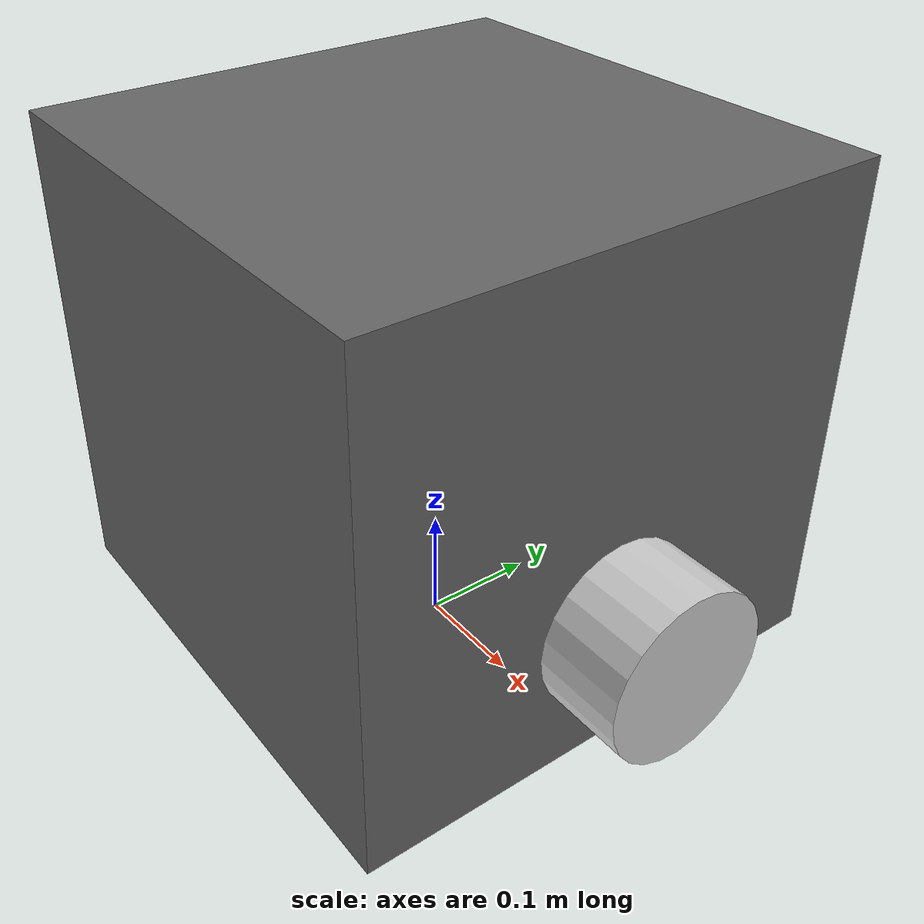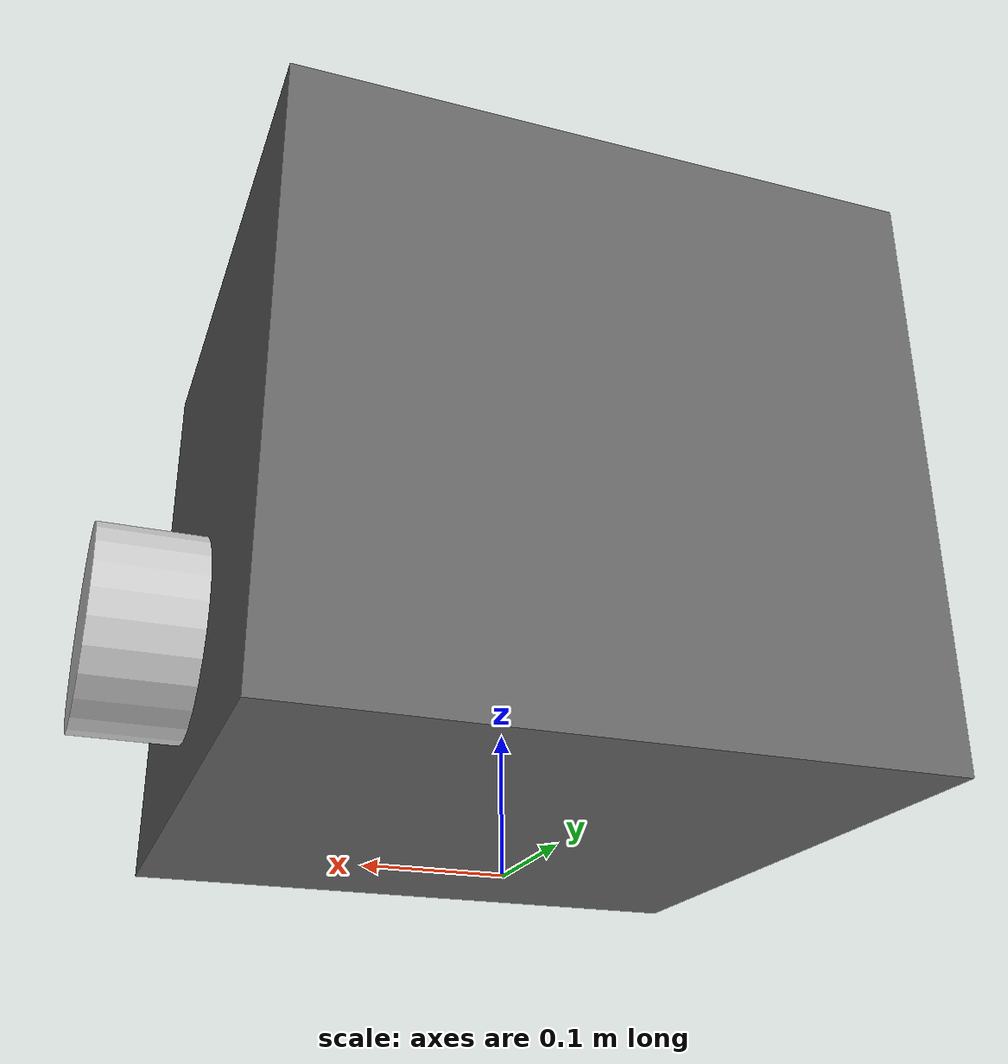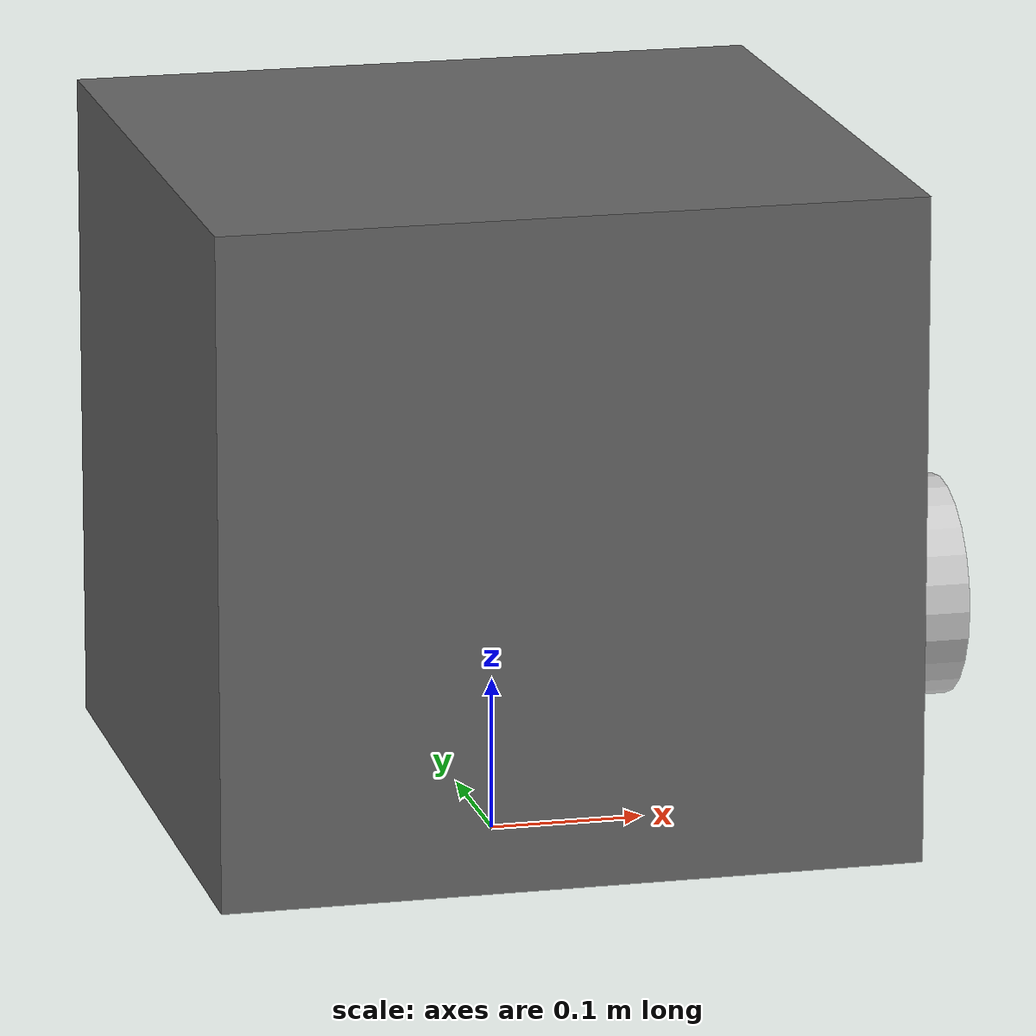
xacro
<?xml version="1.0"?>
<robot name="assist_robot" xmlns:xacro="http://www.ros.org/wiki/xacro">
  <xacro:include filename="$(find cepheus_description)/urdf/assist_robot.gazebo" />
  <xacro:include filename="$(find cepheus_description)/urdf/assist_materials.xacro" />

  <link name="assist_robot">
    <visual>
      <material name="assist_black"> <color rgba="0.4 0.4 0.4 1"/> </material>
      <geometry>
        <box size="0.45 0.45 0.43"/>
      </geometry>
      <origin xyz="0 0 0.245" rpy="0 0 0"/>
    </visual>
  </link>
  <gazebo reference="assist_robot">
    <mu1>0</mu1>
    <mu2>0</mu2>
  </gazebo>

  <link name="drogue">
    <visual>
      <material name="assist_silver"> <color rgba="0.8 0.8 0.8 1"/> </material>
      <geometry>
        <cylinder length="0.1" radius="0.072"/>
      </geometry>
      <origin xyz="0 0 -0.05" rpy="0 0 0"/>
    </visual>
  </link>

  <joint name="drogue_joint" type="fixed">
    <parent link="assist_robot"/>
    <child link="drogue"/>
    <origin xyz="0.3 0 0.145" rpy="1.570796 0 1.570796"/>
    <axis xyz="0 0 1" />
  </joint>

</robot>

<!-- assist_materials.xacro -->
<robot name="assist_robot" xmlns:xacro="http://www.ros.org/wiki/xacro">
	<material name="black">
		<color rgba="0.0 0.0 0.0 1.0"/>
	</material>
	<material name="blue">
		<color rgba="0.0 0.0 0.8 1.0"/>
	</material>
	<material name="green">
		<color rgba="0.0 0.8 0.0 1.0"/>
	</material>
	<material name="grey">
		<color rgba="0.2 0.2 0.2 1.0"/>
	</material>
	<material name="orange">
		<color rgba="${255/255}
		 ${108/255}
		 ${10/255}
		 1.0"/>
	</material>
	<material name="brown">
		<color rgba="${222/255}
		 ${207/255}
		 ${195/255}
		 1.0"/>
	</material>
	<material name="red">
		<color rgba="0.8 0.0 0.0 1.0"/>
	</material>
	<material name="white">
		<color rgba="1.0 1.0 1.0 1.0"/>
	</material>
    <material name="silver">
        <color rgba= "0.8 0.8 0.8 1"/>
    </material>
</robot>
